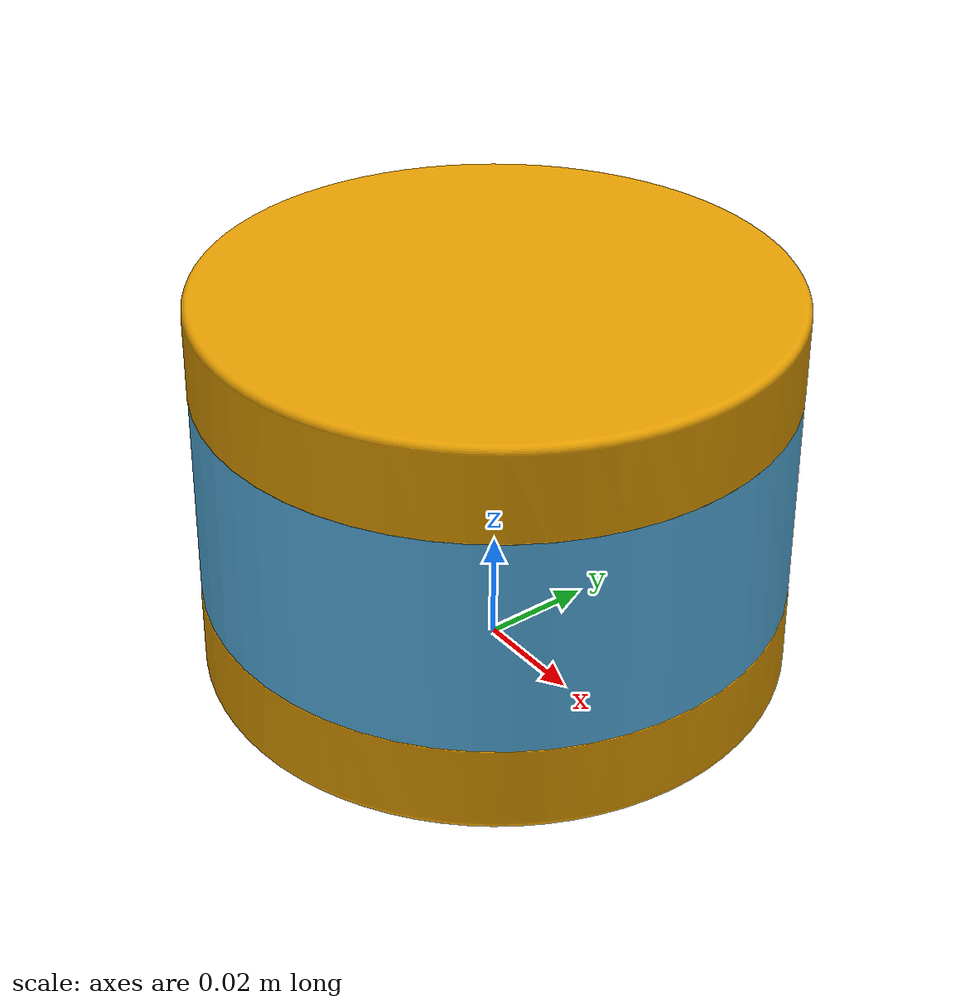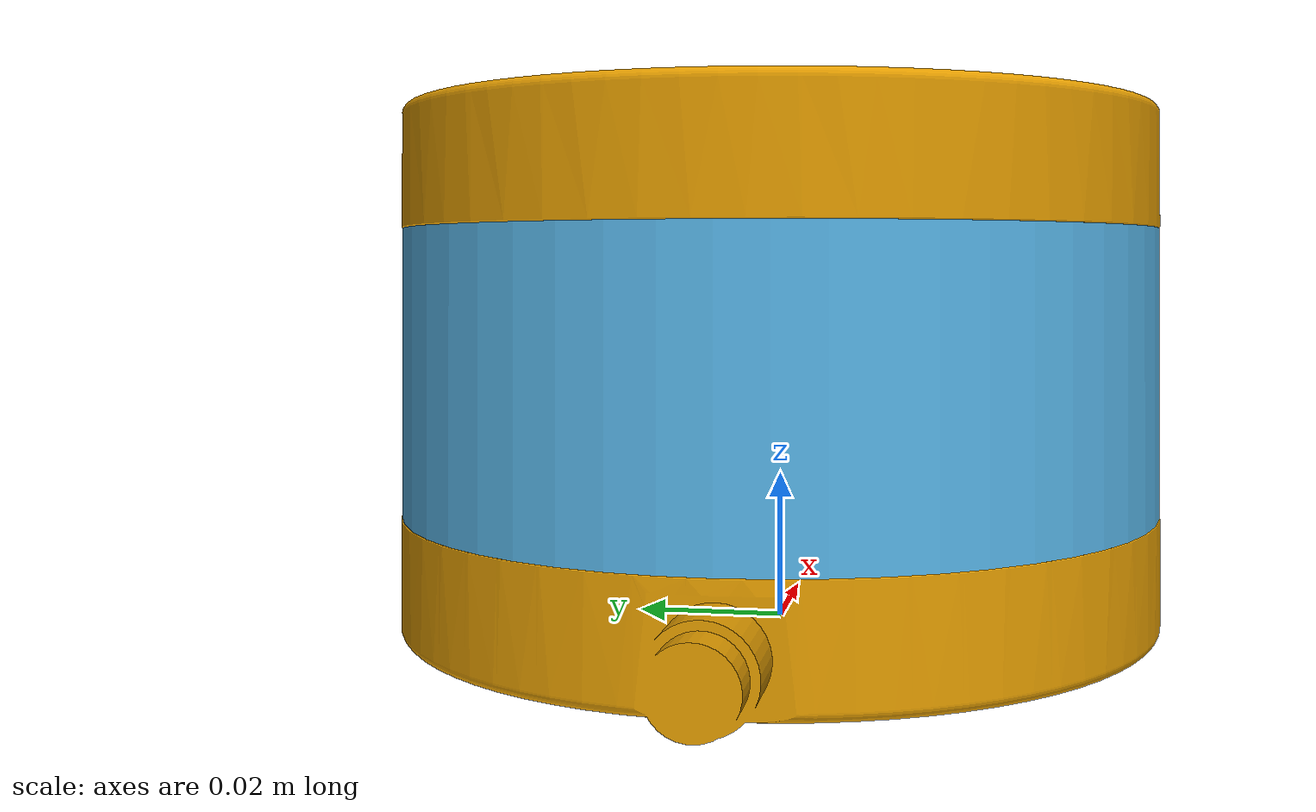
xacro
<?xml version='1.0' encoding='utf-8'?>
<!--
SPDX-FileCopyrightText: Alliander N. V.

SPDX-License-Identifier: Apache-2.0
-->

<robot xmlns:xacro="http://www.ros.org/wiki/xacro" name="VLP-16">
  <xacro:property name="M_PI" value="3.1415926535897931" />
  <xacro:macro name="VLP-16"
    params="
    *origin
    namespace
    parent
    name:=velodyne
    update_rate:=10
    lasers:=16
    samples:=1875
    min_range:=0.6
    max_range:=130.0
    min_angle:=-${M_PI}
    max_angle:=${M_PI}
    ">

    <link name="base_link">
      <inertial>
        <mass value="0.83" />
        <origin xyz="0 0 0.03585" />
        <inertia ixx="${(0.83 * (3.0*0.0516*0.0516 + 0.0717*0.0717)) / 12.0}" ixy="0" ixz="0"
          iyy="${(0.83 * (3.0*0.0516*0.0516 + 0.0717*0.0717)) / 12.0}" iyz="0"
          izz="${0.5 * 0.83 * (0.0516*0.0516)}" />
      </inertial>
      <visual>
        <geometry>
          <mesh filename="package://alliander_description/velodyne/meshes/VLP16_base_1.dae" />
        </geometry>
      </visual>
      <visual>
        <geometry>
          <mesh filename="package://alliander_description/velodyne/meshes/VLP16_base_2.dae" />
        </geometry>
      </visual>
      <collision>
        <origin rpy="0 0 0" xyz="0 0 0.03585" />
        <geometry>
          <cylinder radius="0.0516" length="0.0717" />
        </geometry>
      </collision>
    </link>

    <joint name="base_scan_joint" type="fixed">
      <origin xyz="0 0 0.0377" rpy="0 0 0" />
      <parent link="base_link" />
      <child link="${name}" />
    </joint>

    <link name="${name}">
      <inertial>
        <mass value="0.01" />
        <origin xyz="0 0 0" />
        <inertia ixx="1e-7" ixy="0" ixz="0" iyy="1e-7" iyz="0" izz="1e-7" />
      </inertial>
      <visual>
        <origin xyz="0 0 -0.0377" />
        <geometry>
          <mesh filename="package://alliander_description/velodyne/meshes/VLP16_scan.dae" />
        </geometry>
      </visual>
    </link>

    <!-- Gazebo requires a joint to a link called "world" for statically mounted robots -->
    <xacro:if value="${parent == 'world'}">
      <link name="${parent}" />
      <joint name="${parent}_joint" type="fixed">
        <parent link="${parent}" />
        <child link="base_link" />
      </joint>
    </xacro:if>

    <gazebo reference="${name}">
      <sensor type="gpu_lidar" name="${namespace}">
        <always_on>true</always_on>
        <update_rate>${update_rate}</update_rate>

        <topic>${namespace}/scan</topic>
        <visualize>false</visualize>

        <gz_frame_id>${namespace}/${name}</gz_frame_id>
        <frame_id>${namespace}/${name}</frame_id>

        <ray>
          <scan>
            <horizontal>
              <samples>${samples}</samples>
              <resolution>1</resolution>
              <min_angle>${min_angle}</min_angle>
              <max_angle>${max_angle}</max_angle>
            </horizontal>
            <vertical>
              <samples>${lasers}</samples>
              <resolution>1</resolution>
              <min_angle>-${15.0*M_PI/180.0}</min_angle>
              <max_angle> ${15.0*M_PI/180.0}</max_angle>
            </vertical>
          </scan>
          <range>
            <min>${min_range}</min>
            <max>${max_range}</max>
            <resolution>0.001</resolution>
          </range>
          <noise>
            <type>gaussian</type>
            <mean>0.0</mean>
            <stddev>0.0</stddev>
          </noise>
        </ray>
      </sensor>
    </gazebo>

  </xacro:macro>

  <xacro:arg name="namespace" default="velodyne" />
  <xacro:arg name="parent" default="" />
  <xacro:VLP-16 namespace="$(arg namespace)" parent="$(arg parent)">
    <origin xyz="0 0 0" rpy="0 0 0" />
  </xacro:VLP-16>
</robot>
